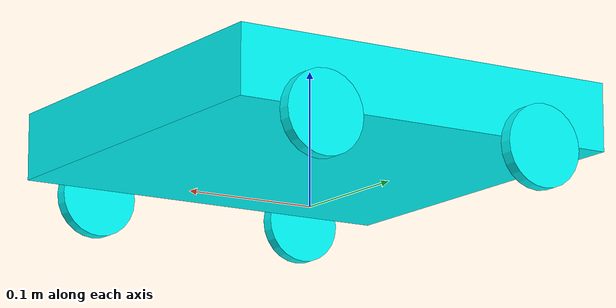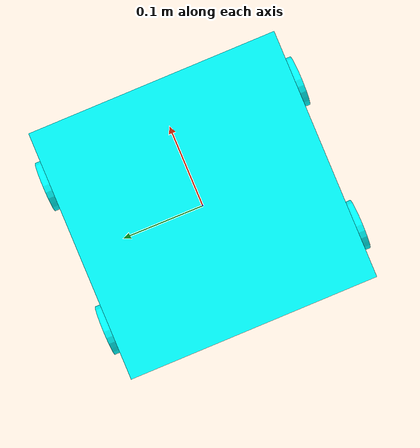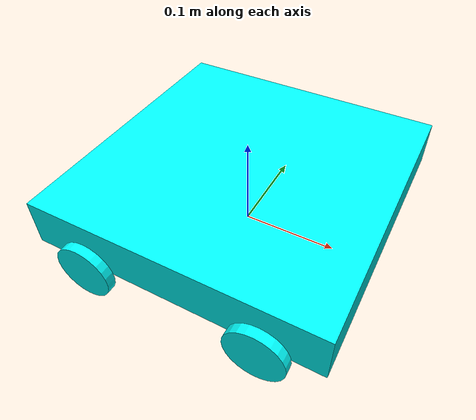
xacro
<?xml version="1.0"?>

<robot name="simple4wd"
  xmlns:xacro="http://www.ros.org/wiki/xacro">

  <xacro:include filename="$(find simple_description)/urdf/wheel.urdf.xacro" />

  <!-- Constants -->
  <xacro:property name="BASE_WIDTH" value="0.3"/>
  <xacro:property name="BASE_LENGTH" value="0.3"/>
  <xacro:property name="BASE_HEIGHT" value="0.05"/>
  <xacro:property name="BASE_MASS" value="4"/>

  <xacro:property name="WHEEL_WIDTH" value="0.01"/>
  <xacro:property name="WHEEL_RADIUS" value="0.03"/>
  <xacro:property name="WHEEL_MASS" value="1"/>

  <xacro:property name="PI" value="3.1415926535897931"/>

  <!-- Materials -->
  <material name="cyan">
    <color rgba="0 1.0 1.0 1.0"/>
  </material>

  <!-- Used for fixing robot to Gazebo 'base_link' -->
  <link name="world"/>

  <joint name="fixed" type="fixed">
    <parent link="world"/>
    <child link="base_link"/>
    <origin xyz="0 0 ${BASE_HEIGHT/2 + WHEEL_RADIUS}" rpy="0 0 0" />
  </joint>

  <!-- Robot Base (front is facing positive x) -->
  <link name="base_link">
    <visual>
      <geometry>
        <box size="${BASE_WIDTH} ${BASE_LENGTH} ${BASE_HEIGHT}"/>
      </geometry>
      <material name="cyan"/>
    </visual>

    <collision>
      <geometry>
        <box size="${BASE_WIDTH} ${BASE_LENGTH} ${BASE_HEIGHT}"/>
      </geometry>
    </collision>

    <inertial>
      <mass value="${BASE_MASS}"/>
      <inertia
        ixx="${BASE_MASS / 12.0 * (BASE_LENGTH * BASE_LENGTH + BASE_HEIGHT * BASE_HEIGHT)}" ixy="0" ixz="0"
        iyy="${BASE_MASS / 12.0 * (BASE_WIDTH * BASE_WIDTH + BASE_HEIGHT * BASE_HEIGHT)}" iyz="0"
        izz="${BASE_MASS / 12.0 * (BASE_WIDTH * BASE_WIDTH + BASE_LENGTH * BASE_LENGTH)}"
      />
    </inertial>
  </link>

  <!-- Wheels -->
  <wheel
    name_link="front_left_wheel_link" parent_link="base_link"
    mass="${WHEEL_MASS}" radius="${WHEEL_RADIUS}" width="${WHEEL_WIDTH}"
    translate_x="${BASE_WIDTH/2 - 2*WHEEL_RADIUS}"
    translate_y="${BASE_LENGTH/2 + WHEEL_WIDTH/2}"
    translate_z="${-WHEEL_RADIUS}"
  />

  <wheel
    name_link="front_right_wheel_link" parent_link="base_link"
    mass="${WHEEL_MASS}" radius="${WHEEL_RADIUS}" width="${WHEEL_WIDTH}"
    translate_x="${BASE_WIDTH/2 - 2*WHEEL_RADIUS}"
    translate_y="${-(BASE_LENGTH/2 + WHEEL_WIDTH/2)}"
    translate_z="${-WHEEL_RADIUS}"
  />

  <wheel
    name_link="back_left_wheel_link" parent_link="base_link"
    mass="${WHEEL_MASS}" radius="${WHEEL_RADIUS}" width="${WHEEL_WIDTH}"
    translate_x="${-(BASE_WIDTH/2 - 2*WHEEL_RADIUS)}"
    translate_y="${BASE_LENGTH/2 + WHEEL_WIDTH/2}"
    translate_z="${-WHEEL_RADIUS}"
  />

  <wheel
    name_link="back_right_wheel_link" parent_link="base_link"
    mass="${WHEEL_MASS}" radius="${WHEEL_RADIUS}" width="${WHEEL_WIDTH}"
    translate_x="${-(BASE_WIDTH/2 - 2*WHEEL_RADIUS)}"
    translate_y="${-(BASE_LENGTH/2 + WHEEL_WIDTH/2)}"
    translate_z="${-WHEEL_RADIUS}"
  />

</robot>

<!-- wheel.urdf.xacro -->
<!-- Reference: https://github.com/qboticslabs/mastering_ros_robot_description_pkg/blob/master/urdf/wheel.urdf.xacro -->

<robot name="wheel"
  xmlns:xacro="http://www.ros.org/wiki/xacro">

  <xacro:macro name="wheel" params="name_link parent_link mass radius width translate_x translate_y translate_z">
    <link name="${name_link}">
      <visual>
        <origin xyz="0 0 0" rpy="${PI/2} 0  0 " />
        <geometry>
          <cylinder length="${width}" radius="${radius}" />
        </geometry>
        <material name="cyan"/>
      </visual>

      <collision>
        <origin xyz="0 0 0" rpy="${PI/2} 0 0 " />
        <geometry>
          <cylinder length="${width}" radius="${radius}" />
        </geometry>
      </collision>

      <inertial>
        <mass value="${mass}" />
        <origin xyz="0 0 0" />
        <inertia
          ixx="${mass*(3*radius*radius+width*width)/12}" ixy="0" ixz="0"
          iyy="${mass*(3*radius*radius+width*width)/12}" iyz="0"
          izz="${mass*radius*radius/2}" />
      </inertial>
    </link>

    <joint name="${name_link}_joint" type="continuous">
      <parent link="${parent_link}"/>
      <child link="${name_link}"/>
      <origin xyz="${translate_x} ${translate_y} ${translate_z}" rpy="0 0 0" />
      <axis xyz="0 1 0" rpy="0 0 0" />
    </joint>
  </xacro:macro>

</robot>
